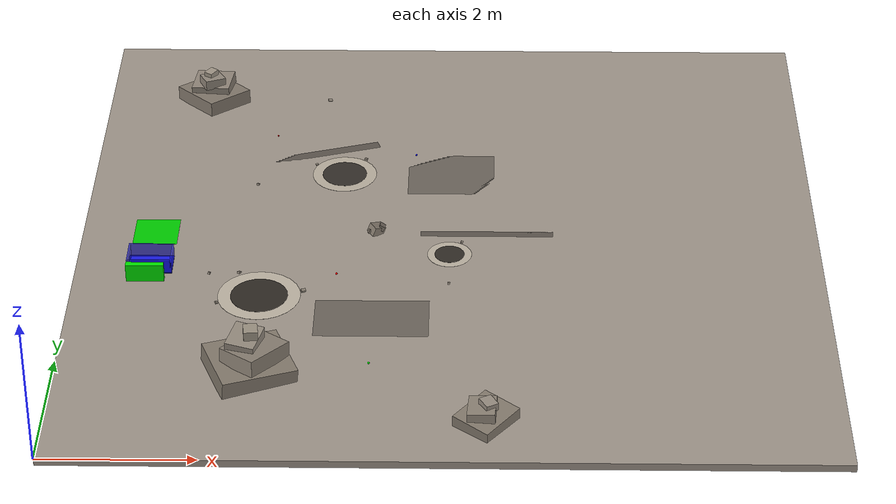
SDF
<sdf version="1.6">
 <world name="lunar_arena">
  <model name="lunar_ground">
   <static>true</static>
   <pose>5 5 -0.05 0 0 0</pose>
   <link name="ground_link">
    <collision name="ground_collision">
     <geometry><box><size>10 10 0.1</size></box></geometry>
     <surface><friction><ode><mu>0.9</mu><mu2>0.7</mu2></ode></friction></surface>
    </collision>
    <visual name="ground_visual">
     <geometry><box><size>10 10 0.1</size></box></geometry>
     <material>
      <ambient>0.35 0.34 0.32 1</ambient>
      <diffuse>0.62 0.58 0.54 1</diffuse>
      <specular>0.04 0.04 0.04 1</specular>
      <emissive>0 0 0 1</emissive>
     </material>
    </visual>
   </link>
  </model>
  <model name="wall_north">
   <static>true</static>
   <pose>5 10.05 0.5 0 0 0</pose>
   <link name="l"><collision name="c"><geometry><box><size>10 0.1 1</size></box></geometry></collision></link>
  </model>
  <model name="wall_south">
   <static>true</static>
   <pose>5 -0.05 0.5 0 0 0</pose>
   <link name="l"><collision name="c"><geometry><box><size>10 0.1 1</size></box></geometry></collision></link>
  </model>
  <model name="wall_west">
   <static>true</static>
   <pose>-0.05 5 0.5 0 0 0</pose>
   <link name="l"><collision name="c"><geometry><box><size>0.1 10 1</size></box></geometry></collision></link>
  </model>
  <model name="start_marker">
   <static>true</static>
   <pose>1 5 0.001 0 0 0</pose>
   <link name="link">
    <visual name="visual">
     <geometry><box><size>0.6 0.6 0.002</size></box></geometry>
     <material><ambient>0 0.6 0 1</ambient><diffuse>0 0.8 0 1</diffuse><emissive>0 0.2 0 1</emissive></material>
    </visual>
   </link>
  </model>
  <model name="start_label">
   <static>true</static>
   <pose>1 3.6 0.3 0 0 0</pose>
   <link name="link">
    <visual name="visual">
     <geometry><box><size>0.5 0.08 0.25</size></box></geometry>
     <material><ambient>0 0.7 0 1</ambient><diffuse>0 0.9 0 1</diffuse><emissive>0 0.2 0 1</emissive></material>
    </visual>
   </link>
  </model>
  <model name="sample_container">
   <static>true</static>
   <pose>1 4.2 0 0 0 0</pose>
   <link name="base">
    <collision name="floor_c"><geometry><box><size>0.6 0.4 0.02</size></box></geometry></collision>
    <visual name="floor_v">
     <pose>0 0 0.01 0 0 0</pose>
     <geometry><box><size>0.6 0.4 0.02</size></box></geometry>
     <material>
      <ambient>0.1 0.1 0.8 1</ambient>
      <diffuse>0.1 0.1 0.9 1</diffuse>
      <emissive>0 0 0.15 1</emissive>
     </material>
    </visual>
   </link>
   <link name="wall_front">
    <pose>0.29 0 0.11 0 0 0</pose>
    <collision name="c"><geometry><box><size>0.02 0.4 0.2</size></box></geometry></collision>
    <visual name="v">
     <geometry><box><size>0.02 0.4 0.2</size></box></geometry>
     <material><ambient>0.1 0.1 0.8 0.7</ambient><emissive>0 0 0.1 1</emissive></material>
    </visual>
   </link>
   <link name="wall_back">
    <pose>-0.29 0 0.11 0 0 0</pose>
    <collision name="c"><geometry><box><size>0.02 0.4 0.2</size></box></geometry></collision>
    <visual name="v">
     <geometry><box><size>0.02 0.4 0.2</size></box></geometry>
     <material><ambient>0.1 0.1 0.8 0.7</ambient><emissive>0 0 0.1 1</emissive></material>
    </visual>
   </link>
   <link name="wall_left">
    <pose>0 0.19 0.11 0 0 0</pose>
    <collision name="c"><geometry><box><size>0.6 0.02 0.2</size></box></geometry></collision>
    <visual name="v">
     <geometry><box><size>0.6 0.02 0.2</size></box></geometry>
     <material><ambient>0.1 0.1 0.8 0.7</ambient><emissive>0 0 0.1 1</emissive></material>
    </visual>
   </link>
   <link name="wall_right">
    <pose>0 -0.19 0.11 0 0 0</pose>
    <collision name="c"><geometry><box><size>0.6 0.02 0.2</size></box></geometry></collision>
    <visual name="v">
     <geometry><box><size>0.6 0.02 0.2</size></box></geometry>
     <material><ambient>0.1 0.1 0.8 0.7</ambient><emissive>0 0 0.1 1</emissive></material>
    </visual>
   </link>
   <joint name="j1" type="fixed"><parent>base</parent><child>wall_front</child></joint>
   <joint name="j2" type="fixed"><parent>base</parent><child>wall_back</child></joint>
   <joint name="j3" type="fixed"><parent>base</parent><child>wall_left</child></joint>
   <joint name="j4" type="fixed"><parent>base</parent><child>wall_right</child></joint>
  </model>
  <model name="valley_1">
   <static>true</static>
   <pose>4 3 -0.06 0 0 0</pose>
   <link name="link">
    <collision name="c">
     <geometry><box><size>1.5 0.8 0.12</size></box></geometry>
     <surface><friction><ode><mu>0.8</mu><mu2>0.6</mu2></ode></friction></surface>
    </collision>
    <visual name="v">
     <geometry><box><size>1.5 0.8 0.12</size></box></geometry>
     <material>
      <ambient>0.22 0.21 0.19 1</ambient>
      <diffuse>0.42 0.39 0.36 1</diffuse>
      <specular>0.03 0.03 0.03 1</specular>
     </material>
    </visual>
   </link>
  </model>
  <model name="valley_2">
   <static>true</static>
   <pose>5 6.5 -0.06 0 0 0</pose>
   <link name="link">
    <collision name="c">
     <geometry><box><size>1.2 1.0 0.12</size></box></geometry>
     <surface><friction><ode><mu>0.8</mu><mu2>0.6</mu2></ode></friction></surface>
    </collision>
    <visual name="v">
     <geometry><box><size>1.2 1.0 0.12</size></box></geometry>
     <material>
      <ambient>0.22 0.21 0.19 1</ambient>
      <diffuse>0.42 0.39 0.36 1</diffuse>
      <specular>0.03 0.03 0.03 1</specular>
     </material>
    </visual>
   </link>
  </model>
  <model name="groove_1">
   <static>true</static>
   <pose>3 7 -0.04 0 0 0.3</pose>
   <link name="link">
    <collision name="c">
     <geometry><box><size>2.0 0.15 0.08</size></box></geometry>
     <surface><friction><ode><mu>0.7</mu><mu2>0.5</mu2></ode></friction></surface>
    </collision>
    <visual name="v">
     <geometry><box><size>2.0 0.15 0.08</size></box></geometry>
     <material>
      <ambient>0.18 0.17 0.15 1</ambient>
      <diffuse>0.36 0.33 0.30 1</diffuse>
      <specular>0.03 0.03 0.03 1</specular>
     </material>
    </visual>
   </link>
  </model>
  <model name="groove_2">
   <static>true</static>
   <pose>5.5 5 -0.04 0 0 0</pose>
   <link name="link">
    <collision name="c">
     <geometry><box><size>1.8 0.12 0.08</size></box></geometry>
     <surface><friction><ode><mu>0.7</mu><mu2>0.5</mu2></ode></friction></surface>
    </collision>
    <visual name="v">
     <geometry><box><size>1.8 0.12 0.08</size></box></geometry>
     <material>
      <ambient>0.18 0.17 0.15 1</ambient>
      <diffuse>0.36 0.33 0.30 1</diffuse>
      <specular>0.03 0.03 0.03 1</specular>
     </material>
    </visual>
   </link>
  </model>
  <model name="mountain_1">
   <static>true</static>
   <pose>2.5 1.8 0 0 0 0.4</pose>
   <link name="link">
    <collision name="layer1_c">
     <pose>0 0 0.12 0.08 0.05 0</pose>
     <geometry><box><size>1.00 0.85 0.25</size></box></geometry>
    </collision>
    <visual name="layer1_v">
     <pose>0 0 0.12 0.08 0.05 0</pose>
     <geometry><box><size>1.00 0.85 0.25</size></box></geometry>
     <material>
      <ambient>0.28 0.26 0.23 1</ambient>
      <diffuse>0.52 0.48 0.43 1</diffuse>
      <specular>0.03 0.03 0.03 1</specular>
     </material>
    </visual>
    <collision name="layer2_c">
     <pose>0.06 -0.04 0.32 -0.05 0.10 0.5</pose>
     <geometry><box><size>0.70 0.55 0.22</size></box></geometry>
    </collision>
    <visual name="layer2_v">
     <pose>0.06 -0.04 0.32 -0.05 0.10 0.5</pose>
     <geometry><box><size>0.70 0.55 0.22</size></box></geometry>
     <material>
      <ambient>0.30 0.28 0.25 1</ambient>
      <diffuse>0.55 0.51 0.46 1</diffuse>
      <specular>0.03 0.03 0.03 1</specular>
     </material>
    </visual>
    <collision name="layer3_c">
     <pose>-0.03 0.05 0.47 0.06 -0.08 0.9</pose>
     <geometry><box><size>0.45 0.38 0.18</size></box></geometry>
    </collision>
    <visual name="layer3_v">
     <pose>-0.03 0.05 0.47 0.06 -0.08 0.9</pose>
     <geometry><box><size>0.45 0.38 0.18</size></box></geometry>
     <material>
      <ambient>0.32 0.30 0.27 1</ambient>
      <diffuse>0.58 0.54 0.49 1</diffuse>
      <specular>0.03 0.03 0.03 1</specular>
     </material>
    </visual>
    <collision name="layer4_c">
     <pose>0.04 0.02 0.59 0.03 0.05 1.3</pose>
     <geometry><box><size>0.22 0.18 0.14</size></box></geometry>
    </collision>
    <visual name="layer4_v">
     <pose>0.04 0.02 0.59 0.03 0.05 1.3</pose>
     <geometry><box><size>0.22 0.18 0.14</size></box></geometry>
     <material>
      <ambient>0.34 0.32 0.29 1</ambient>
      <diffuse>0.62 0.58 0.52 1</diffuse>
      <specular>0.04 0.04 0.04 1</specular>
     </material>
    </visual>
   </link>
  </model>
  <model name="mountain_3">
   <static>true</static>
   <pose>1.5 8.5 0 0 0 2.3</pose>
   <link name="link">
    <collision name="layer1_c">
     <pose>0 0 0.10 0.05 0.08 0</pose>
     <geometry><box><size>0.80 0.70 0.20</size></box></geometry>
    </collision>
    <visual name="layer1_v">
     <pose>0 0 0.10 0.05 0.08 0</pose>
     <geometry><box><size>0.80 0.70 0.20</size></box></geometry>
     <material>
      <ambient>0.28 0.26 0.23 1</ambient>
      <diffuse>0.52 0.48 0.43 1</diffuse>
      <specular>0.03 0.03 0.03 1</specular>
     </material>
    </visual>
    <collision name="layer2_c">
     <pose>0.04 -0.03 0.24 -0.07 0.05 0.7</pose>
     <geometry><box><size>0.55 0.45 0.18</size></box></geometry>
    </collision>
    <visual name="layer2_v">
     <pose>0.04 -0.03 0.24 -0.07 0.05 0.7</pose>
     <geometry><box><size>0.55 0.45 0.18</size></box></geometry>
     <material>
      <ambient>0.30 0.28 0.25 1</ambient>
      <diffuse>0.55 0.51 0.46 1</diffuse>
      <specular>0.03 0.03 0.03 1</specular>
     </material>
    </visual>
    <collision name="layer3_c">
     <pose>-0.03 0.04 0.36 0.06 -0.05 1.3</pose>
     <geometry><box><size>0.30 0.26 0.14</size></box></geometry>
    </collision>
    <visual name="layer3_v">
     <pose>-0.03 0.04 0.36 0.06 -0.05 1.3</pose>
     <geometry><box><size>0.30 0.26 0.14</size></box></geometry>
     <material>
      <ambient>0.32 0.30 0.27 1</ambient>
      <diffuse>0.58 0.54 0.49 1</diffuse>
      <specular>0.03 0.03 0.03 1</specular>
     </material>
    </visual>
    <collision name="layer4_c">
     <pose>0.02 0.02 0.45 0 0.04 1.8</pose>
     <geometry><box><size>0.16 0.13 0.10</size></box></geometry>
    </collision>
    <visual name="layer4_v">
     <pose>0.02 0.02 0.45 0 0.04 1.8</pose>
     <geometry><box><size>0.16 0.13 0.10</size></box></geometry>
     <material>
      <ambient>0.34 0.32 0.29 1</ambient>
      <diffuse>0.62 0.58 0.52 1</diffuse>
      <specular>0.04 0.04 0.04 1</specular>
     </material>
    </visual>
   </link>
  </model>
  <model name="mountain_5">
   <static>true</static>
   <pose>5.5 0.8 0 0 0 0.9</pose>
   <link name="link">
    <collision name="layer1_c">
     <pose>0 0 0.08 0.05 -0.04 0</pose>
     <geometry><box><size>0.65 0.55 0.16</size></box></geometry>
    </collision>
    <visual name="layer1_v">
     <pose>0 0 0.08 0.05 -0.04 0</pose>
     <geometry><box><size>0.65 0.55 0.16</size></box></geometry>
     <material>
      <ambient>0.28 0.26 0.23 1</ambient>
      <diffuse>0.52 0.48 0.43 1</diffuse>
      <specular>0.03 0.03 0.03 1</specular>
     </material>
    </visual>
    <collision name="layer2_c">
     <pose>-0.03 0.04 0.19 -0.06 0.05 0.6</pose>
     <geometry><box><size>0.42 0.35 0.14</size></box></geometry>
    </collision>
    <visual name="layer2_v">
     <pose>-0.03 0.04 0.19 -0.06 0.05 0.6</pose>
     <geometry><box><size>0.42 0.35 0.14</size></box></geometry>
     <material>
      <ambient>0.30 0.28 0.25 1</ambient>
      <diffuse>0.55 0.51 0.46 1</diffuse>
      <specular>0.03 0.03 0.03 1</specular>
     </material>
    </visual>
    <collision name="layer3_c">
     <pose>0.02 -0.02 0.28 0.04 -0.03 1.2</pose>
     <geometry><box><size>0.20 0.17 0.10</size></box></geometry>
    </collision>
    <visual name="layer3_v">
     <pose>0.02 -0.02 0.28 0.04 -0.03 1.2</pose>
     <geometry><box><size>0.20 0.17 0.10</size></box></geometry>
     <material>
      <ambient>0.33 0.31 0.28 1</ambient>
      <diffuse>0.60 0.56 0.51 1</diffuse>
      <specular>0.04 0.04 0.04 1</specular>
     </material>
    </visual>
   </link>
  </model>
  <model name="crater_1">
   <static>true</static>
   <pose>2.5 3.5 0 0 0 0</pose>
   <link name="link">
    <visual name="rim_v">
     <pose>0 0 0.001 0 0 0</pose>
     <geometry><cylinder><radius>0.55</radius><length>0.002</length></cylinder></geometry>
     <material>
      <ambient>0.42 0.40 0.37 1</ambient>
      <diffuse>0.74 0.70 0.64 1</diffuse>
      <specular>0.04 0.04 0.04 1</specular>
     </material>
    </visual>
    <visual name="floor_v">
     <pose>0 0 0.003 0 0 0</pose>
     <geometry><cylinder><radius>0.38</radius><length>0.002</length></cylinder></geometry>
     <material>
      <ambient>0.08 0.07 0.06 1</ambient>
      <diffuse>0.18 0.16 0.14 1</diffuse>
      <specular>0.01 0.01 0.01 1</specular>
     </material>
    </visual>
    <collision name="ej1_c">
     <pose>0.58 0.10 0.015 0.2 0.1 0.4</pose>
     <geometry><box><size>0.06 0.05 0.03</size></box></geometry>
    </collision>
    <visual name="ej1_v">
     <pose>0.58 0.10 0.015 0.2 0.1 0.4</pose>
     <geometry><box><size>0.06 0.05 0.03</size></box></geometry>
     <material><ambient>0.30 0.28 0.25 1</ambient><diffuse>0.55 0.51 0.46 1</diffuse></material>
    </visual>
    <collision name="ej2_c">
     <pose>-0.30 0.52 0.012 -0.1 0.3 1.1</pose>
     <geometry><box><size>0.05 0.04 0.025</size></box></geometry>
    </collision>
    <visual name="ej2_v">
     <pose>-0.30 0.52 0.012 -0.1 0.3 1.1</pose>
     <geometry><box><size>0.05 0.04 0.025</size></box></geometry>
     <material><ambient>0.32 0.30 0.27 1</ambient><diffuse>0.58 0.54 0.49 1</diffuse></material>
    </visual>
    <collision name="ej3_c">
     <pose>-0.55 -0.18 0.010 0.4 -0.2 2.0</pose>
     <geometry><box><size>0.045 0.035 0.020</size></box></geometry>
    </collision>
    <visual name="ej3_v">
     <pose>-0.55 -0.18 0.010 0.4 -0.2 2.0</pose>
     <geometry><box><size>0.045 0.035 0.020</size></box></geometry>
     <material><ambient>0.30 0.28 0.25 1</ambient><diffuse>0.55 0.51 0.46 1</diffuse></material>
    </visual>
   </link>
  </model>
  <model name="crater_2">
   <static>true</static>
   <pose>3.5 6.5 0 0 0 0.6</pose>
   <link name="link">
    <visual name="rim_v">
     <pose>0 0 0.001 0 0 0</pose>
     <geometry><cylinder><radius>0.45</radius><length>0.002</length></cylinder></geometry>
     <material>
      <ambient>0.40 0.38 0.35 1</ambient>
      <diffuse>0.72 0.68 0.62 1</diffuse>
      <specular>0.04 0.04 0.04 1</specular>
     </material>
    </visual>
    <visual name="floor_v">
     <pose>0 0 0.003 0 0 0</pose>
     <geometry><cylinder><radius>0.31</radius><length>0.002</length></cylinder></geometry>
     <material>
      <ambient>0.09 0.08 0.07 1</ambient>
      <diffuse>0.20 0.18 0.16 1</diffuse>
      <specular>0.01 0.01 0.01 1</specular>
     </material>
    </visual>
    <collision name="ej1_c">
     <pose>0.45 0.15 0.012 0.1 0.2 0.7</pose>
     <geometry><box><size>0.05 0.04 0.025</size></box></geometry>
    </collision>
    <visual name="ej1_v">
     <pose>0.45 0.15 0.012 0.1 0.2 0.7</pose>
     <geometry><box><size>0.05 0.04 0.025</size></box></geometry>
     <material><ambient>0.31 0.29 0.26 1</ambient><diffuse>0.56 0.52 0.47 1</diffuse></material>
    </visual>
    <collision name="ej2_c">
     <pose>-0.20 0.42 0.010 -0.2 0.1 1.4</pose>
     <geometry><box><size>0.04 0.032 0.020</size></box></geometry>
    </collision>
    <visual name="ej2_v">
     <pose>-0.20 0.42 0.010 -0.2 0.1 1.4</pose>
     <geometry><box><size>0.04 0.032 0.020</size></box></geometry>
     <material><ambient>0.30 0.28 0.25 1</ambient><diffuse>0.55 0.51 0.46 1</diffuse></material>
    </visual>
   </link>
  </model>
  <model name="crater_3">
   <static>true</static>
   <pose>5.0 4.5 0 0 0 1.2</pose>
   <link name="link">
    <visual name="rim_v">
     <pose>0 0 0.001 0 0 0</pose>
     <geometry><cylinder><radius>0.30</radius><length>0.002</length></cylinder></geometry>
     <material>
      <ambient>0.41 0.39 0.36 1</ambient>
      <diffuse>0.73 0.69 0.63 1</diffuse>
      <specular>0.04 0.04 0.04 1</specular>
     </material>
    </visual>
    <visual name="floor_v">
     <pose>0 0 0.003 0 0 0</pose>
     <geometry><cylinder><radius>0.20</radius><length>0.002</length></cylinder></geometry>
     <material>
      <ambient>0.08 0.07 0.06 1</ambient>
      <diffuse>0.19 0.17 0.15 1</diffuse>
      <specular>0.01 0.01 0.01 1</specular>
     </material>
    </visual>
    <collision name="ej1_c">
     <pose>0.32 -0.05 0.010 0.3 0.0 0.3</pose>
     <geometry><box><size>0.04 0.030 0.020</size></box></geometry>
    </collision>
    <visual name="ej1_v">
     <pose>0.32 -0.05 0.010 0.3 0.0 0.3</pose>
     <geometry><box><size>0.04 0.030 0.020</size></box></geometry>
     <material><ambient>0.32 0.30 0.27 1</ambient><diffuse>0.58 0.54 0.49 1</diffuse></material>
    </visual>
   </link>
  </model>
  <model name="rock_1_red">
   <static>false</static>
   <pose>3.5 4.0 0.015 0 0 0</pose>
   <link name="link">
    <inertial>
     <mass>0.035</mass>
     <inertia><ixx>0.00001</ixx><iyy>0.00001</iyy><izz>0.00001</izz></inertia>
    </inertial>
    <collision name="c">
     <geometry><sphere><radius>0.015</radius></sphere></geometry>
     <surface><friction><ode><mu>0.8</mu><mu2>0.8</mu2></ode></friction></surface>
    </collision>
    <visual name="v">
     <geometry><sphere><radius>0.015</radius></sphere></geometry>
     <material><ambient>0.9 0.1 0.1 1</ambient><diffuse>1 0 0 1</diffuse><emissive>0.3 0 0 1</emissive></material>
    </visual>
   </link>
  </model>
  <model name="rock_2_blue">
   <static>false</static>
   <pose>4.5 7.0 0.013 0 0 0</pose>
   <link name="link">
    <inertial>
     <mass>0.030</mass>
     <inertia><ixx>0.00001</ixx><iyy>0.00001</iyy><izz>0.00001</izz></inertia>
    </inertial>
    <collision name="c">
     <geometry><sphere><radius>0.013</radius></sphere></geometry>
     <surface><friction><ode><mu>0.8</mu><mu2>0.8</mu2></ode></friction></surface>
    </collision>
    <visual name="v">
     <geometry><sphere><radius>0.013</radius></sphere></geometry>
     <material><ambient>0.1 0.1 0.9 1</ambient><diffuse>0 0 1 1</diffuse><emissive>0 0 0.3 1</emissive></material>
    </visual>
   </link>
  </model>
  <model name="rock_7_red">
   <static>false</static>
   <pose>2.5 7.5 0.012 0 0 0</pose>
   <link name="link">
    <inertial>
     <mass>0.025</mass>
     <inertia><ixx>0.00001</ixx><iyy>0.00001</iyy><izz>0.00001</izz></inertia>
    </inertial>
    <collision name="c">
     <geometry><sphere><radius>0.012</radius></sphere></geometry>
     <surface><friction><ode><mu>0.8</mu><mu2>0.8</mu2></ode></friction></surface>
    </collision>
    <visual name="v">
     <geometry><sphere><radius>0.012</radius></sphere></geometry>
     <material><ambient>0.9 0.1 0.1 1</ambient><diffuse>1 0 0 1</diffuse><emissive>0.3 0 0 1</emissive></material>
    </visual>
   </link>
  </model>
  <model name="rock_9_green">
   <static>false</static>
   <pose>4.0 2.0 0.015 0 0 0</pose>
   <link name="link">
    <inertial>
     <mass>0.045</mass>
     <inertia><ixx>0.00001</ixx><iyy>0.00001</iyy><izz>0.00001</izz></inertia>
    </inertial>
    <collision name="c">
     <geometry><sphere><radius>0.015</radius></sphere></geometry>
     <surface><friction><ode><mu>0.8</mu><mu2>0.8</mu2></ode></friction></surface>
    </collision>
    <visual name="v">
     <geometry><sphere><radius>0.015</radius></sphere></geometry>
     <material><ambient>0.1 0.8 0.1 1</ambient><diffuse>0 1 0 1</diffuse><emissive>0 0.3 0 1</emissive></material>
    </visual>
   </link>
  </model>
  <model name="rock_obstacle_1">
   <static>true</static>
   <pose>4 5 0 0 0 0.7</pose>
   <link name="link">
    <collision name="body_c">
     <pose>0 0 0.07 0.2 0.3 0</pose>
     <geometry><box><size>0.18 0.14 0.13</size></box></geometry>
    </collision>
    <visual name="body_v">
     <pose>0 0 0.07 0.2 0.3 0</pose>
     <geometry><box><size>0.18 0.14 0.13</size></box></geometry>
     <material>
      <ambient>0.28 0.26 0.23 1</ambient>
      <diffuse>0.52 0.48 0.43 1</diffuse>
      <specular>0.04 0.04 0.04 1</specular>
     </material>
    </visual>
    <collision name="bump_c">
     <pose>0.06 -0.04 0.10 0.5 0.1 0.8</pose>
     <geometry><box><size>0.10 0.08 0.07</size></box></geometry>
    </collision>
    <visual name="bump_v">
     <pose>0.06 -0.04 0.10 0.5 0.1 0.8</pose>
     <geometry><box><size>0.10 0.08 0.07</size></box></geometry>
     <material>
      <ambient>0.26 0.24 0.21 1</ambient>
      <diffuse>0.48 0.44 0.40 1</diffuse>
      <specular>0.04 0.04 0.04 1</specular>
     </material>
    </visual>
    <collision name="back_c">
     <pose>-0.07 0.03 0.05 -0.2 0.4 -0.5</pose>
     <geometry><box><size>0.08 0.07 0.06</size></box></geometry>
    </collision>
    <visual name="back_v">
     <pose>-0.07 0.03 0.05 -0.2 0.4 -0.5</pose>
     <geometry><box><size>0.08 0.07 0.06</size></box></geometry>
     <material>
      <ambient>0.27 0.25 0.22 1</ambient>
      <diffuse>0.50 0.46 0.41 1</diffuse>
      <specular>0.04 0.04 0.04 1</specular>
     </material>
    </visual>
   </link>
  </model>
  <model name="pebble_1">
   <static>true</static>
   <pose>2.0 2.0 0.015 0.3 0.2 0.5</pose>
   <link name="l">
    <visual name="v">
     <geometry><box><size>0.05 0.04 0.030</size></box></geometry>
     <material>
      <ambient>0.30 0.28 0.25 1</ambient>
      <diffuse>0.55 0.51 0.46 1</diffuse>
      <specular>0.04 0.04 0.04 1</specular>
     </material>
    </visual>
   </link>
  </model>
  <model name="pebble_2">
   <static>true</static>
   <pose>2.3 6.2 0.012 0.1 0.4 1.2</pose>
   <link name="l">
    <visual name="v">
     <geometry><box><size>0.045 0.035 0.025</size></box></geometry>
     <material>
      <ambient>0.32 0.30 0.27 1</ambient>
      <diffuse>0.58 0.54 0.49 1</diffuse>
      <specular>0.04 0.04 0.04 1</specular>
     </material>
    </visual>
   </link>
  </model>
  <model name="pebble_3">
   <static>true</static>
   <pose>3.2 8.5 0.014 0.5 0.1 0.3</pose>
   <link name="l">
    <visual name="v">
     <geometry><box><size>0.055 0.040 0.028</size></box></geometry>
     <material>
      <ambient>0.31 0.29 0.26 1</ambient>
      <diffuse>0.56 0.52 0.47 1</diffuse>
      <specular>0.04 0.04 0.04 1</specular>
     </material>
    </visual>
   </link>
  </model>
  <model name="pebble_4">
   <static>true</static>
   <pose>5.0 3.8 0.011 0.2 0.3 1.5</pose>
   <link name="l">
    <visual name="v">
     <geometry><box><size>0.040 0.032 0.024</size></box></geometry>
     <material>
      <ambient>0.34 0.32 0.29 1</ambient>
      <diffuse>0.62 0.58 0.52 1</diffuse>
      <specular>0.04 0.04 0.04 1</specular>
     </material>
    </visual>
   </link>
  </model>
  <model name="pebble_11">
   <static>true</static>
   <pose>1.8 4.0 0.012 0.2 0.4 1.4</pose>
   <link name="l">
    <visual name="v">
     <geometry><box><size>0.045 0.032 0.025</size></box></geometry>
     <material>
      <ambient>0.31 0.29 0.26 1</ambient>
      <diffuse>0.56 0.52 0.47 1</diffuse>
      <specular>0.04 0.04 0.04 1</specular>
     </material>
    </visual>
   </link>
  </model>
 </world>
</sdf>
